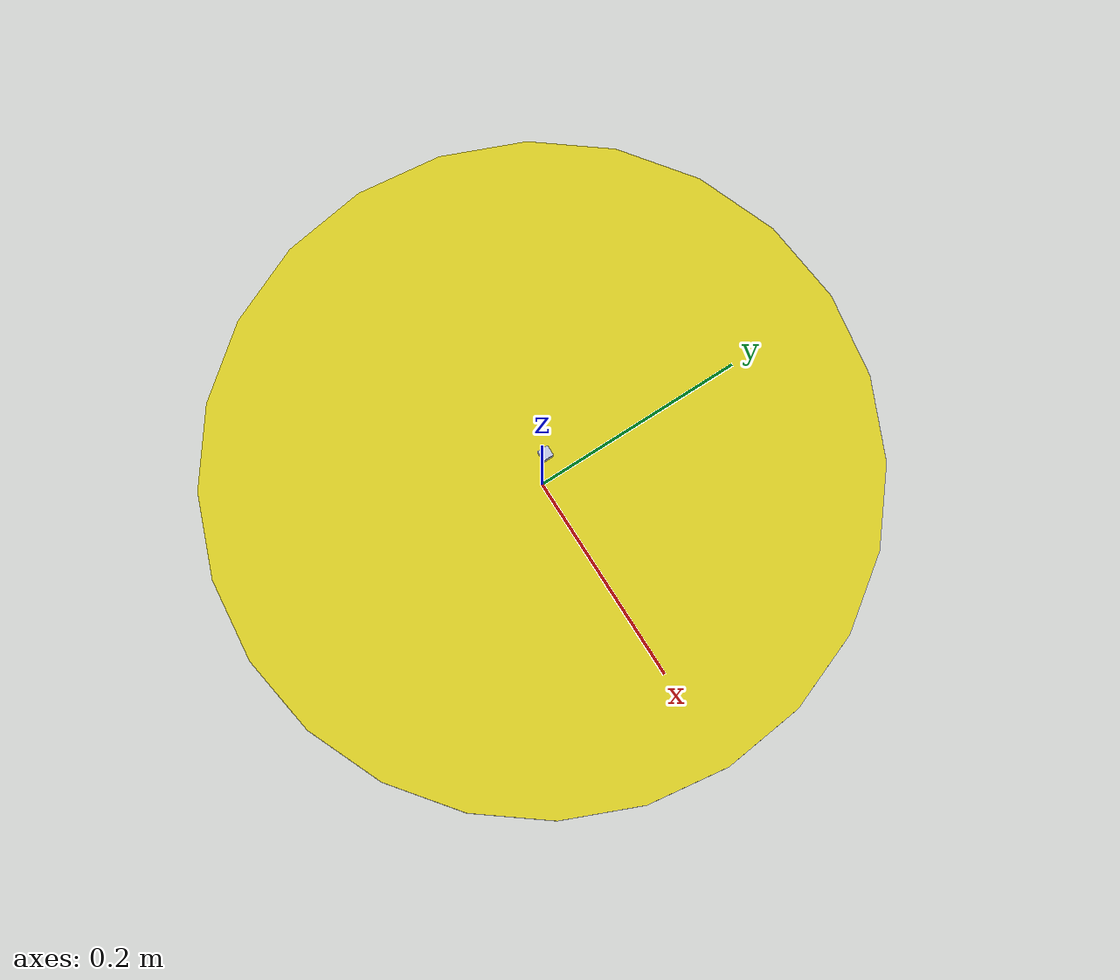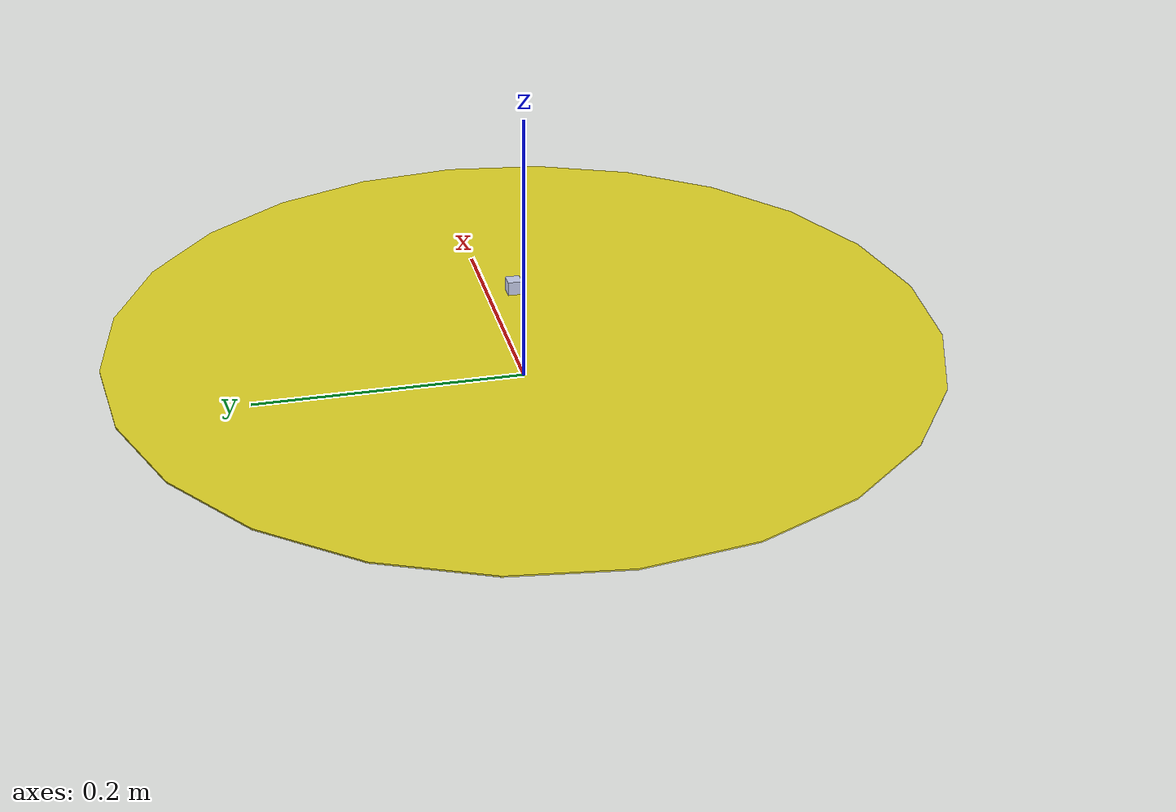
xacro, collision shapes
<?xml version="1.0"?>

<robot name="quadrotor" xmlns:xacro="http://www.ros.org/wiki/xacro">

    <!-- Included URDF Files -->
    <xacro:include filename="$(find drone_description)/urdf/drone.xacro" />

    <!-- Instantiate quadrotor_base_macro once (has no parameters atm) -->
    <xacro:drone />

    <gazebo>
      <plugin name="quadrotor_aerodynamics" filename="libhector_gazebo_quadrotor_aerodynamics.so">
        <alwaysOn>true</alwaysOn>
        <updateRate>0.0</updateRate>
        <bodyName>base_link</bodyName>
        <frameId>$(arg base_link_frame)</frameId>
      </plugin>
    </gazebo>

    <gazebo>
      <plugin name="quadrotor_propulsion" filename="libhector_gazebo_quadrotor_propulsion.so">
        <alwaysOn>true</alwaysOn>
        <updateRate>0.0</updateRate>
        <bodyName>base_link</bodyName>
        <frameId>$(arg base_link_frame)</frameId>
        <controlRate>100.0</controlRate>
        <controlTolerance>0.01</controlTolerance>
        <controlDelay>0.01</controlDelay>
        <motorStatusRate>0.0</motorStatusRate>
        <triggerTopic></triggerTopic>
        <topicName></topicName>
        <pwmTopicName></pwmTopicName>
        <supplyTopic></supplyTopic>
        <wrenchTopic></wrenchTopic>
        <statusTopic></statusTopic>
      </plugin>
    </gazebo>

    <gazebo>
      <plugin name="quadrotor_controller" filename="libgazebo_ros_control.so">
        <controlPeriod>0.01</controlPeriod>
        <robotSimType>hector_quadrotor_controller_gazebo/QuadrotorHardwareSim</robotSimType>
      </plugin>
    </gazebo>

<gazebo reference="laser">
    <sensor type="ray" name="head_rplidar_sensor">
      <pose>0 0 0.06 0 0 0</pose>
      <visualize>false</visualize>
      <update_rate>40</update_rate>
      <ray>
        <scan>
          <horizontal>
            <samples>720</samples>
            <resolution>1</resolution>
            <min_angle>-3.14159265</min_angle>
            <max_angle>3.14159265</max_angle>
          </horizontal>
        </scan>
        <range>
          <min>0.2</min>
          <max>30.0</max>
          <resolution>0.01</resolution>
        </range>
        <noise>
          <type>gaussian</type>
          <mean>0.0</mean>
          <stddev>0.01</stddev>
        </noise>
      </ray>
      <plugin name="gazebo_ros_head_rplidar_controller" filename="libgazebo_ros_laser.so">
        <topicName>scan</topicName>
        <frameName>laser</frameName>
      </plugin>
    </sensor>
  </gazebo>

<gazebo reference="mini_lidar">
   <sensor type="ray" name="hieght_sensor">
      <pose>0 0 0 0 0 0</pose>
      <visualize>true</visualize>
      <update_rate>50</update_rate>
      <ray>
         <scan>
            <horizontal>
               <samples>10</samples>
               <resolution>1</resolution>
               <min_angle>-0.14835</min_angle>
               <max_angle>0.14835</max_angle>
            </horizontal>
            <vertical>
               <samples>10</samples>
               <resolution>1</resolution>
               <min_angle>-0.14835</min_angle>
               <max_angle>0.14835</max_angle>
            </vertical>
         </scan>
         <range>
            <min>0.01</min>
            <max>10</max>
            <resolution>0.02</resolution>
         </range>
      </ray>
      <plugin filename="libgazebo_ros_range.so" name="gazebo_ros_range">
         <gaussianNoise>0.005</gaussianNoise>
         <alwaysOn>true</alwaysOn>
         <updateRate>50</updateRate>
         <topicName>sensor_hieght</topicName>
         <frameName>mini_lidar</frameName>
         <radiation>INFRARED</radiation>
         <fov>0.2967</fov>
      </plugin>
   </sensor>
   </gazebo>

</robot>

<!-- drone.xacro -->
<robot xmlns:xacro="http://www.ros.org/wiki/xacro">

  <!-- Main quadrotor link -->
  <xacro:macro name="drone">
    <link name="base_link">
      <inertial>
        <mass value="1.477" />
        <origin xyz="0 0 0" />
        <inertia ixx="0.01152" ixy="0.0" ixz="0.0" iyy="0.01152" iyz="0.0" izz="0.0218" />
      </inertial>

      <visual>
        <origin xyz="0 0 0" rpy="0 0 0" />
        <geometry>
          <mesh filename="package://drone_description/meshes/drone.stl"/>
        </geometry>
      </visual>

      <collision>
        <origin xyz="0 0 0.04" rpy="0 0 0" />
        <geometry>
          <cylinder length="0.001" radius="0.301958"/>
        </geometry>
      </collision>
    </link>

 <link name="laser">
    <inertial>
      <origin
        xyz="0 0 0"
        rpy="0 0 0" />
      <mass
        value="0.001" />
      <inertia
        ixx="0.01"
        ixy="0.01"
        ixz="0.01"
        iyy="0.01"
        iyz="0.01"
        izz="0.01" />
    </inertial>
    <visual>
      <origin
        xyz="0 0 0"
        rpy="0 0 0" />
      <geometry>
        <mesh
          filename="package://drone_description/meshes/rplidar.stl" />
      </geometry>
      <material
        name="">
        <color
          rgba="0.792156862745098 0.819607843137255 0.933333333333333 1" />
      </material>
    </visual>
    <collision>
      <origin
        xyz="0 0 0"
        rpy="0 0 0" />
      <geometry>
          <box size="0.01 0.01 0.01"/>
      </geometry>
    </collision>
    </link>

<joint name="laser_base" type="fixed">
      <parent link="base_link"/>
      <child link="laser"/>
      <origin xyz="-0.01 0.01 0.08"/>
    </joint>

 <link name="mini_lidar">
    <inertial>
      <origin
        xyz="0 0 0"
        rpy="1.57 0 0" />
      <mass
        value="0.001" />
      <inertia
        ixx="0.01"
        ixy="0.01"
        ixz="0.01"
        iyy="0.01"
        iyz="0.01"
        izz="0.01" />
    </inertial>
    <visual>
      <origin
        xyz="0 0 0"
        rpy="1.57 0 0" />
      <geometry>
        <mesh
          filename="package://drone_description/meshes/TFMini.stl" />
      </geometry>
      <material
        name="">
        <color
          rgba="0.792156862745098 0.819607843137255 0.933333333333333 1" />
      </material>
    </visual>
    <collision>
      <origin
        xyz="0 0 0"
        rpy="1.57 0 0" />
      <geometry>
          <box size="0.01 0.01 0.01"/>
      </geometry>
    </collision>
    </link>

<joint name="mini_lidar_to_base" type="fixed">
      <parent link="base_link"/>
      <child link="mini_lidar"/>
      <origin xyz="0 0 .016" rpy="0 1.57 0"/>
    </joint>

  <gazebo reference="base_link">
 <material>Gazebo/Yellow</material>
</gazebo>

  <gazebo reference="mini_lidar">
 <material>Gazebo/Blue</material>
</gazebo>

  <gazebo reference="laser">
 <material>Gazebo/LightOn</material>
</gazebo>

  </xacro:macro>
</robot>
